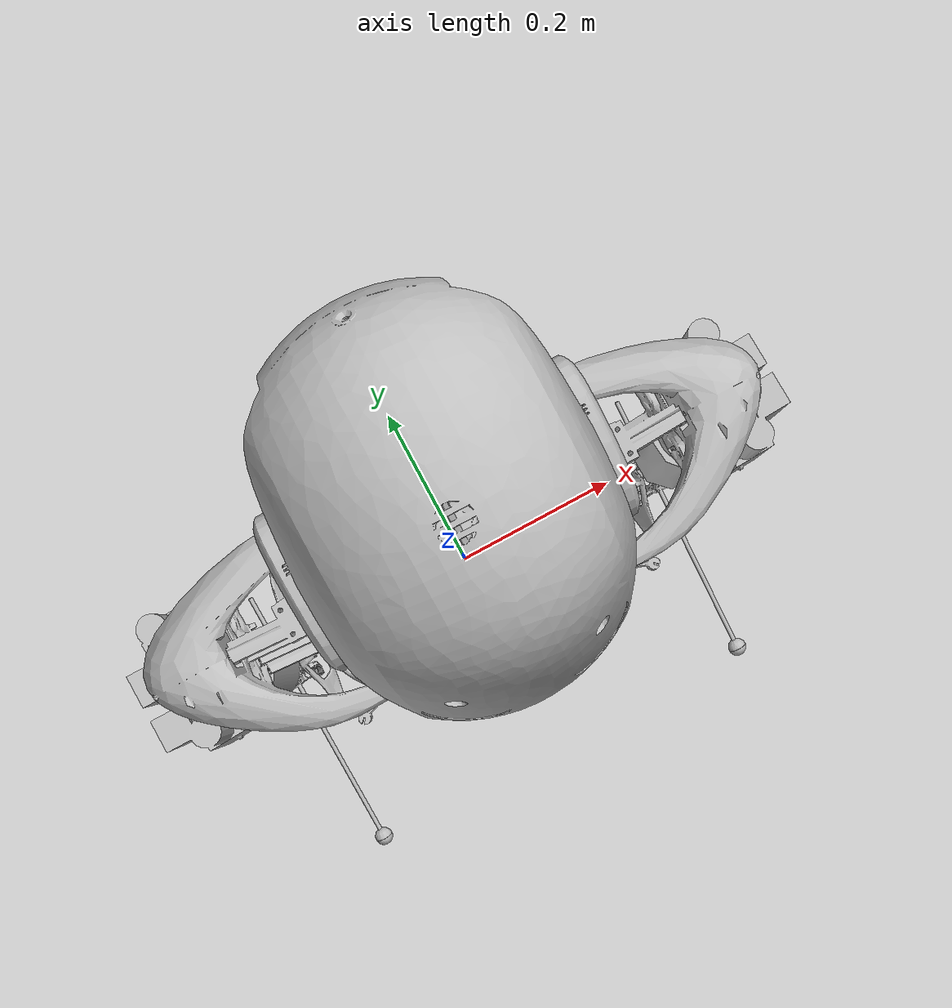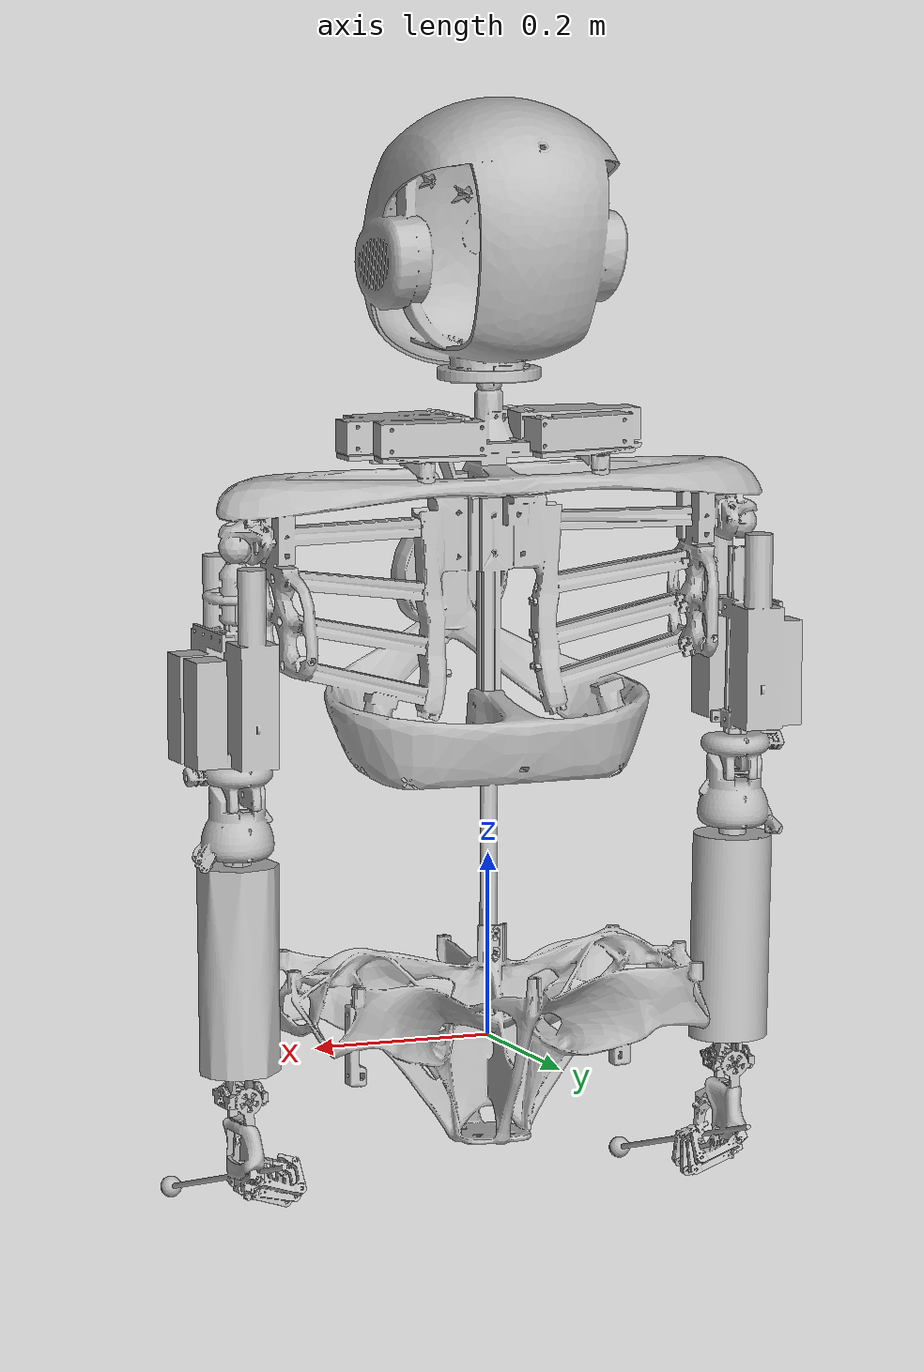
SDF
<sdf version="1.6">
    <model name="roboy_xylophone">
        <link name="torso">
            <self_collide>false</self_collide>
            <pose frame="">0.0 0.0 0.0 0.0 -0.0 0.0</pose>
            <inertial>
                <pose frame="">0.0 0.0 0.0 0 0 0</pose>
                <mass>1.372368407891531</mass>
                <inertia>
                    <ixx>3.910765453374194</ixx>
                    <ixy>-0.001095224797113174</ixy>
                    <ixz>0.043302154633862465</ixz>
                    <iyy>4.168439034043004</iyy>
                    <iyz>-0.013228815176824301</iyz>
                    <izz>0.3524412985016293</izz>
                </inertia>
            </inertial>
            <collision name="torso_collision">
                <geometry>
                    <mesh>
                        <uri>model://roboy_xylophone/meshes/collisions/torso.stl</uri>
                        <scale>0.001 0.001 0.001</scale>
                    </mesh>
                </geometry>
            </collision>
            <visual name="torso_visual">
                <geometry>
                    <mesh>
                        <uri>model://roboy_xylophone/meshes/visuals/torso.stl</uri>
                        <scale>0.001 0.001 0.001</scale>
                    </mesh>
                </geometry>
            </visual>
        </link>
        <link name="right_hand">
            <self_collide>false</self_collide>
            <pose frame="">-0.2698510367085325 -0.0017499434157416084 -0.1302469819688276 0.0 -0.0 0.0</pose>
            <inertial>
                <pose frame="">0.0 0.0 0.0 0 0 0</pose>
                <mass>0.020805908239869125</mass>
                <inertia>
                    <ixx>0.0075567109842610385</ixx>
                    <ixy>-0.003870948682374514</ixy>
                    <ixz>-0.0027023479542121133</ixz>
                    <iyy>0.019913740298193046</iyy>
                    <iyz>-0.0076257923873708664</iyz>
                    <izz>0.018971657099651783</izz>
                </inertia>
            </inertial>
            <collision name="right_hand_collision">
                <geometry>
                    <mesh>
                        <uri>model://roboy_xylophone/meshes/collisions/right_hand.stl</uri>
                        <scale>0.001 0.001 0.001</scale>
                    </mesh>
                </geometry>
            </collision>
            <visual name="right_hand_visual">
                <geometry>
                    <mesh>
                        <uri>model://roboy_xylophone/meshes/visuals/right_hand.stl</uri>
                        <scale>0.001 0.001 0.001</scale>
                    </mesh>
                </geometry>
            </visual>
        </link>
        <link name="left_hand">
            <self_collide>false</self_collide>
            <pose frame="">0.2697594900165811 -0.006792324262862302 -0.1314462184560031 0.0 -0.0 0.0</pose>
            <inertial>
                <pose frame="">0.0 0.0 0.0 0 0 0</pose>
                <mass>0.018650433962187907</mass>
                <inertia>
                    <ixx>0.00742411081802007</ixx>
                    <ixy>0.0038015046666095465</ixy>
                    <ixz>-0.002693661217771364</ixz>
                    <iyy>0.01767984161098725</iyy>
                    <iyz>0.007164025065289065</iyz>
                    <izz>0.016872438513441758</izz>
                </inertia>
            </inertial>
            <collision name="left_hand_collision">
                <geometry>
                    <mesh>
                        <uri>model://roboy_xylophone/meshes/collisions/left_hand.stl</uri>
                        <scale>0.001 0.001 0.001</scale>
                    </mesh>
                </geometry>
            </collision>
            <visual name="left_hand_visual">
                <geometry>
                    <mesh>
                        <uri>model://roboy_xylophone/meshes/visuals/left_hand.stl</uri>
                        <scale>0.001 0.001 0.001</scale>
                    </mesh>
                </geometry>
            </visual>
        </link>
        <link name="elbow_left">
            <self_collide>false</self_collide>
            <pose frame="">0.2924609988878703 0.0026742978127753526 0.24368519978311523 0.0 -0.0 0.0</pose>
            <inertial>
                <pose frame="">0.0 0.0 0.0 0 0 0</pose>
                <mass>0.015681537169755258</mass>
                <inertia>
                    <ixx>0.009431757217348843</ixx>
                    <ixy>-0.00012517065329283248</ixy>
                    <ixz>-9.888439213748464e-05</ixz>
                    <iyy>0.022865599183266166</iyy>
                    <iyz>-0.011162126418678987</iyz>
                    <izz>0.013542050845808416</izz>
                </inertia>
            </inertial>
            <collision name="elbow_left_collision">
                <geometry>
                    <mesh>
                        <uri>model://roboy_xylophone/meshes/collisions/elbow_left.stl</uri>
                        <scale>0.001 0.001 0.001</scale>
                    </mesh>
                </geometry>
            </collision>
            <visual name="elbow_left_visual">
                <geometry>
                    <mesh>
                        <uri>model://roboy_xylophone/meshes/visuals/elbow_left.stl</uri>
                        <scale>0.001 0.001 0.001</scale>
                    </mesh>
                </geometry>
            </visual>
        </link>
        <link name="elbow_right">
            <self_collide>false</self_collide>
            <pose frame="">-0.29205436561642706 0.002562136866253571 0.2407449775865269 0.0 -0.0 0.0</pose>
            <inertial>
                <pose frame="">0.0 0.0 0.0 0 0 0</pose>
                <mass>0.01737509895674572</mass>
                <inertia>
                    <ixx>0.010199619270761047</ixx>
                    <ixy>0.00013260458238670674</ixy>
                    <ixz>-0.0001041660034778284</ixz>
                    <iyy>0.02504128534242205</iyy>
                    <iyz>0.012203668182971939</iyz>
                    <izz>0.014951862459761598</izz>
                </inertia>
            </inertial>
            <collision name="elbow_right_collision">
                <geometry>
                    <mesh>
                        <uri>model://roboy_xylophone/meshes/collisions/elbow_right.stl</uri>
                        <scale>0.001 0.001 0.001</scale>
                    </mesh>
                </geometry>
            </collision>
            <visual name="elbow_right_visual">
                <geometry>
                    <mesh>
                        <uri>model://roboy_xylophone/meshes/visuals/elbow_right.stl</uri>
                        <scale>0.001 0.001 0.001</scale>
                    </mesh>
                </geometry>
            </visual>
        </link>
        <link name="sphere_right_link1">
            <self_collide>false</self_collide>
            <pose frame="">-0.2921799666276168 0.009210203783611735 0.548615244082417 0.0 -0.0 0.0</pose>
            <inertial>
                <pose frame="">0.0 0.0 0.0 0 0 0</pose>
                <mass>0.004675596089362313</mass>
                <inertia>
                    <ixx>0.014082487940467327</ixx>
                    <ixy>0.00012582201998645568</ixy>
                    <ixz>-0.00023625123995044107</ixz>
                    <iyy>0.01807003753984725</iyy>
                    <iyz>0.0074947179360907975</iyz>
                    <izz>0.004001456143427335</izz>
                </inertia>
            </inertial>
            <collision name="sphere_right_link1_collision">
                <geometry>
                    <mesh>
                        <uri>model://roboy_xylophone/meshes/collisions/sphere_right_link1.stl</uri>
                        <scale>0.001 0.001 0.001</scale>
                    </mesh>
                </geometry>
            </collision>
            <visual name="sphere_right_link1_visual">
                <geometry>
                    <mesh>
                        <uri>model://roboy_xylophone/meshes/visuals/sphere_right_link1.stl</uri>
                        <scale>0.001 0.001 0.001</scale>
                    </mesh>
                </geometry>
            </visual>
        </link>
        <link name="sphere_right_link2">
            <self_collide>false</self_collide>
            <pose frame="">-0.2921801724945091 0.009209908408672508 0.5486152414548352 0.0 -0.0 0.0</pose>
            <inertial>
                <pose frame="">0.0 0.0 0.0 0 0 0</pose>
                <mass>0.003133941577358247</mass>
                <inertia>
                    <ixx>0.009437852970646556</ixx>
                    <ixy>8.433288313845014e-05</ixy>
                    <ixz>-0.00015834854451237578</ixz>
                    <iyy>0.012110617225243162</iyy>
                    <iyz>0.005023535852643668</iyz>
                    <izz>0.002680779380039669</izz>
                </inertia>
            </inertial>
            <collision name="sphere_right_link2_collision">
                <geometry>
                    <mesh>
                        <uri>model://roboy_xylophone/meshes/collisions/sphere_right_link2.stl</uri>
                        <scale>0.001 0.001 0.001</scale>
                    </mesh>
                </geometry>
            </collision>
            <visual name="sphere_right_link2_visual">
                <geometry>
                    <mesh>
                        <uri>model://roboy_xylophone/meshes/visuals/sphere_right_link2.stl</uri>
                        <scale>0.001 0.001 0.001</scale>
                    </mesh>
                </geometry>
            </visual>
        </link>
        <link name="sphere_left_link1">
            <self_collide>false</self_collide>
            <pose frame="">0.29218005222734156 0.009210203825021935 0.5486152687569047 0.0 -0.0 0.0</pose>
            <inertial>
                <pose frame="">0.0 0.0 0.0 0 0 0</pose>
                <mass>0.0046755519327953445</mass>
                <inertia>
                    <ixx>0.014082356273081548</ixx>
                    <ixy>-0.00012582086921548955</ixy>
                    <ixz>-0.00023624902092354817</ixz>
                    <iyy>0.01806987052231626</iyy>
                    <iyz>-0.00749464968837342</iyz>
                    <izz>0.004001420718449545</izz>
                </inertia>
            </inertial>
            <collision name="sphere_left_link1_collision">
                <geometry>
                    <mesh>
                        <uri>model://roboy_xylophone/meshes/collisions/sphere_left_link1.stl</uri>
                        <scale>0.001 0.001 0.001</scale>
                    </mesh>
                </geometry>
            </collision>
            <visual name="sphere_left_link1_visual">
                <geometry>
                    <mesh>
                        <uri>model://roboy_xylophone/meshes/visuals/sphere_left_link1.stl</uri>
                        <scale>0.001 0.001 0.001</scale>
                    </mesh>
                </geometry>
            </visual>
        </link>
        <link name="sphere_left_link2">
            <self_collide>false</self_collide>
            <pose frame="">0.2921800660285928 0.009209897632250984 0.5486152570091472 0.0 -0.0 0.0</pose>
            <inertial>
                <pose frame="">0.0 0.0 0.0 0 0 0</pose>
                <mass>0.0031340208481721574</mass>
                <inertia>
                    <ixx>0.009438092156368896</ixx>
                    <ixy>-8.433488846064293e-05</ixy>
                    <ixz>-0.00015835236925662997</ixz>
                    <iyy>0.012110922096803804</iyy>
                    <iyz>-0.005023661231281029</iyz>
                    <izz>0.0026808451877708057</izz>
                </inertia>
            </inertial>
            <collision name="sphere_left_link2_collision">
                <geometry>
                    <mesh>
                        <uri>model://roboy_xylophone/meshes/collisions/sphere_left_link2.stl</uri>
                        <scale>0.001 0.001 0.001</scale>
                    </mesh>
                </geometry>
            </collision>
            <visual name="sphere_left_link2_visual">
                <geometry>
                    <mesh>
                        <uri>model://roboy_xylophone/meshes/visuals/sphere_left_link2.stl</uri>
                        <scale>0.001 0.001 0.001</scale>
                    </mesh>
                </geometry>
            </visual>
        </link>
        <link name="wrist_left_1">
            <self_collide>false</self_collide>
            <pose frame="">0.2838291081215929 -0.004517829187733993 -0.0460263795467499 0.0 -0.0 0.0</pose>
            <inertial>
                <pose frame="">0.0 0.0 0.0 0 0 0</pose>
                <mass>0.0012764273069100246</mass>
                <inertia>
                    <ixx>2.9933237342887354e-05</ixx>
                    <ixy>1.6313062661204246e-05</ixy>
                    <ixz>-2.60614002361967e-06</ixz>
                    <iyy>0.001058859487958565</iyy>
                    <iyz>0.00016684286591328332</iyz>
                    <izz>0.0010339769540120504</izz>
                </inertia>
            </inertial>
            <collision name="wrist_left_1_collision">
                <geometry>
                    <mesh>
                        <uri>model://roboy_xylophone/meshes/collisions/wrist_left_1.stl</uri>
                        <scale>0.001 0.001 0.001</scale>
                    </mesh>
                </geometry>
            </collision>
            <visual name="wrist_left_1_visual">
                <geometry>
                    <mesh>
                        <uri>model://roboy_xylophone/meshes/visuals/wrist_left_1.stl</uri>
                        <scale>0.001 0.001 0.001</scale>
                    </mesh>
                </geometry>
            </visual>
        </link>
        <link name="wrist_right_1">
            <self_collide>false</self_collide>
            <pose frame="">-0.2866867429541466 -0.004439510879921008 -0.04905987848597987 0.0 -0.0 0.0</pose>
            <inertial>
                <pose frame="">0.0 0.0 0.0 0 0 0</pose>
                <mass>0.0012762562533547099</mass>
                <inertia>
                    <ixx>3.3596818331877835e-05</ixx>
                    <ixy>-1.6206001652051634e-05</ixy>
                    <ixz>-2.73824321167433e-06</ixz>
                    <iyy>0.0010832076300652943</iyy>
                    <iyz>-0.00017947272958513367</iyz>
                    <izz>0.001054639875188272</izz>
                </inertia>
            </inertial>
            <collision name="wrist_right_1_collision">
                <geometry>
                    <mesh>
                        <uri>model://roboy_xylophone/meshes/collisions/wrist_right_1.stl</uri>
                        <scale>0.001 0.001 0.001</scale>
                    </mesh>
                </geometry>
            </collision>
            <visual name="wrist_right_1_visual">
                <geometry>
                    <mesh>
                        <uri>model://roboy_xylophone/meshes/visuals/wrist_right_1.stl</uri>
                        <scale>0.001 0.001 0.001</scale>
                    </mesh>
                </geometry>
            </visual>
        </link>
        <link name="upper_arm_left">
            <self_collide>false</self_collide>
            <pose frame="">0.30316149801185677 0.006609366620456846 0.3970754157042611 0.0 -0.0 0.0</pose>
            <inertial>
                <pose frame="">0.0 0.0 0.0 0 0 0</pose>
                <mass>0.11809063299122686</mass>
                <inertia>
                    <ixx>0.1924990473234301</ixx>
                    <ixy>-0.0023063348715922343</ixy>
                    <ixz>-0.00308931839405198</ixz>
                    <iyy>0.2997319906640523</iyy>
                    <iyz>-0.14192245743426316</iyz>
                    <izz>0.11100085723502803</izz>
                </inertia>
            </inertial>
            <collision name="upper_arm_left_collision">
                <geometry>
                    <mesh>
                        <uri>model://roboy_xylophone/meshes/collisions/upper_arm_left.stl</uri>
                        <scale>0.001 0.001 0.001</scale>
                    </mesh>
                </geometry>
            </collision>
            <visual name="upper_arm_left_visual">
                <geometry>
                    <mesh>
                        <uri>model://roboy_xylophone/meshes/visuals/upper_arm_left.stl</uri>
                        <scale>0.001 0.001 0.001</scale>
                    </mesh>
                </geometry>
            </visual>
        </link>
        <link name="lower_arm_left">
            <self_collide>false</self_collide>
            <pose frame="">0.2867576752988603 -0.0012029774645435035 0.09482915225116281 0.0 -0.0 0.0</pose>
            <inertial>
                <pose frame="">0.0 0.0 0.0 0 0 0</pose>
                <mass>0.141591868208817</mass>
                <inertia>
                    <ixx>0.01972474263641184</ixx>
                    <ixy>0.0004870846174633889</ixy>
                    <ixz>3.185483018737706e-05</ixz>
                    <iyy>0.1361518524392809</iyy>
                    <iyz>-0.03856116577753053</iyz>
                    <izz>0.11772501099801312</izz>
                </inertia>
            </inertial>
            <collision name="lower_arm_left_collision">
                <geometry>
                    <mesh>
                        <uri>model://roboy_xylophone/meshes/collisions/lower_arm_left.stl</uri>
                        <scale>0.001 0.001 0.001</scale>
                    </mesh>
                </geometry>
            </collision>
            <visual name="lower_arm_left_visual">
                <geometry>
                    <mesh>
                        <uri>model://roboy_xylophone/meshes/visuals/lower_arm_left.stl</uri>
                        <scale>0.001 0.001 0.001</scale>
                    </mesh>
                </geometry>
            </visual>
        </link>
        <link name="lower_arm_right">
            <self_collide>false</self_collide>
            <pose frame="">-0.28690316197811633 -0.0012971012985662463 0.09028215193184677 0.0 -0.0 0.0</pose>
            <inertial>
                <pose frame="">0.0 0.0 0.0 0 0 0</pose>
                <mass>1.3992272098398937</mass>
                <inertia>
                    <ixx>0.018109856489779336</ixx>
                    <ixy>-0.000519132167958026</ixy>
                    <ixz>4.0051155010875704e-05</ixz>
                    <iyy>0.1332812730438574</iyy>
                    <iyz>0.036311065649301234</iyz>
                    <izz>0.11646776713622453</izz>
                </inertia>
            </inertial>
            <collision name="lower_arm_right_collision">
                <geometry>
                    <mesh>
                        <uri>model://roboy_xylophone/meshes/collisions/lower_arm_right.stl</uri>
                        <scale>0.001 0.001 0.001</scale>
                    </mesh>
                </geometry>
            </collision>
            <visual name="lower_arm_right_visual">
                <geometry>
                    <mesh>
                        <uri>model://roboy_xylophone/meshes/visuals/lower_arm_right.stl</uri>
                        <scale>0.001 0.001 0.001</scale>
                    </mesh>
                </geometry>
            </visual>
        </link>
        <link name="upper_arm_right">
            <self_collide>false</self_collide>
            <pose frame="">-0.3025447305327413 0.004242419884484555 0.39763297257341446 0.0 -0.0 0.0</pose>
            <inertial>
                <pose frame="">0.0 0.0 0.0 0 0 0</pose>
                <mass>0.10958327493598512</mass>
                <inertia>
                    <ixx>0.17904249668222721</ixx>
                    <ixy>0.0013739028297231495</ixy>
                    <ixz>-0.0018802494637687244</ixz>
                    <iyy>0.2781451232699976</iyy>
                    <iyz>0.13162899491953578</iyz>
                    <izz>0.10257941183247153</izz>
                </inertia>
            </inertial>
            <collision name="upper_arm_right_collision">
                <geometry>
                    <mesh>
                        <uri>model://roboy_xylophone/meshes/collisions/upper_arm_right.stl</uri>
                        <scale>0.001 0.001 0.001</scale>
                    </mesh>
                </geometry>
            </collision>
            <visual name="upper_arm_right_visual">
                <geometry>
                    <mesh>
                        <uri>model://roboy_xylophone/meshes/visuals/upper_arm_right.stl</uri>
                        <scale>0.001 0.001 0.001</scale>
                    </mesh>
                </geometry>
            </visual>
        </link>
        <link name="sphere_head_link1">
            <self_collide>false</self_collide>
            <pose frame="">-2.0591149070298685e-14 0.0015217810850767161 0.7110989936345878 0.0 -0.0 0.0</pose>
            <inertial>
                <pose frame="">0.0 0.0 0.0 0 0 0</pose>
                <mass>0.0023938100802369734</mass>
                <inertia>
                    <ixx>0.012106595625813408</ixx>
                    <ixy>7.508425305113864e-19</ixy>
                    <ixz>-2.5904304543214497e-05</ixz>
                    <iyy>0.012106540189536562</iyy>
                    <iyz>3.5051683777709287e-16</iyz>
                    <izz>2.012994235293797e-06</izz>
                </inertia>
            </inertial>
            <collision name="sphere_head_link1_collision">
                <geometry>
                    <mesh>
                        <uri>model://roboy_xylophone/meshes/collisions/sphere_head_link1.stl</uri>
                        <scale>0.001 0.001 0.001</scale>
                    </mesh>
                </geometry>
            </collision>
            <visual name="sphere_head_link1_visual">
                <geometry>
                    <mesh>
                        <uri>model://roboy_xylophone/meshes/visuals/sphere_head_link1.stl</uri>
                        <scale>0.001 0.001 0.001</scale>
                    </mesh>
                </geometry>
            </visual>
        </link>
        <link name="shere_head_link2">
            <self_collide>false</self_collide>
            <pose frame="">-2.0576940733084e-14 0.001521781085076725 0.7110989936345874 0.0 -0.0 0.0</pose>
            <inertial>
                <pose frame="">0.0 0.0 0.0 0 0 0</pose>
                <mass>0.0016046417516495697</mass>
                <inertia>
                    <ixx>0.008114981473636663</ixx>
                    <ixy>5.029234407399885e-19</ixy>
                    <ixz>-1.7364422082044644e-05</ixz>
                    <iyy>0.008114944313059423</iyy>
                    <iyz>2.348593541867672e-16</iyz>
                    <izz>9.214497104106424e-07</izz>
                </inertia>
            </inertial>
            <collision name="shere_head_link2_collision">
                <geometry>
                    <mesh>
                        <uri>model://roboy_xylophone/meshes/collisions/shere_head_link2.stl</uri>
                        <scale>0.001 0.001 0.001</scale>
                    </mesh>
                </geometry>
            </collision>
            <visual name="shere_head_link2_visual">
                <geometry>
                    <mesh>
                        <uri>model://roboy_xylophone/meshes/visuals/shere_head_link2.stl</uri>
                        <scale>0.001 0.001 0.001</scale>
                    </mesh>
                </geometry>
            </visual>
        </link>
        <link name="head">
            <self_collide>false</self_collide>
            <kinematic>true</kinematic>
            <pose frame="">0.0006492376358659663 0.015046110821376588 0.8664862621002404 0.0 -0.0 0.0</pose>
            <inertial>
                <pose frame="">0.0 0.0 0.0 0 0 0</pose>
                <mass>1</mass>
                <inertia>
                    <ixx>1.5846048067305112</ixx>
                    <ixy>-2.8828445995337716e-05</ixy>
                    <ixz>-0.02944270231917974</ixz>
                    <iyy>1.578896510489258</iyy>
                    <iyz>-0.0012884346701907063</iyz>
                    <izz>0.0255508320008188</izz>
                </inertia>
            </inertial>
            <collision name="head_collision">
                <geometry>
                    <mesh>
                        <uri>model://roboy_xylophone/meshes/collisions/head.stl</uri>
                        <scale>0.001 0.001 0.001</scale>
                    </mesh>
                </geometry>
            </collision>
            <visual name="head_visual">
                <geometry>
                    <mesh>
                        <uri>model://roboy_xylophone/meshes/visuals/head.stl</uri>
                        <scale>0.001 0.001 0.001</scale>
                    </mesh>
                </geometry>
            </visual>
        </link>
        <link name="base">
            <self_collide>false</self_collide>
            <kinematic>true</kinematic>
            <pose frame="">0.0 0.0 0.0 0.0 -0.0 0.0</pose>
            <inertial>
                <pose frame="">0.0 0.0 0.0 0 0 0</pose>
                <mass>0.08375538014504047</mass>
                <inertia>
                    <ixx>0.004947439478836191</ixx>
                    <ixy>1.8900910193672462e-05</ixy>
                    <ixz>1.8376373411173705e-05</ixz>
                    <iyy>0.013020882991024406</iyy>
                    <iyz>7.086050217485074e-06</iyz>
                    <izz>0.012613089761592724</izz>
                </inertia>
            </inertial>
            <collision name="base_collision">
                <geometry>
                    <mesh>
                        <uri>model://roboy_xylophone/meshes/collisions/base.stl</uri>
                        <scale>0.001 0.001 0.001</scale>
                    </mesh>
                </geometry>
            </collision>
            <visual name="base_visual">
                <geometry>
                    <mesh>
                        <uri>model://roboy_xylophone/meshes/visuals/base.stl</uri>
                        <scale>0.001 0.001 0.001</scale>
                    </mesh>
                </geometry>
            </visual>
        </link>
        <link name="left_stick_tip">
            <self_collide>false</self_collide>
            <pose frame="">0.2692093428891479 -0.27579017670378486 -0.20327503666285687 0.0 -0.0 0.0</pose>
            <inertial>
                <pose frame="">0.0 0.0 0.0 0 0 0</pose>
                <mass>0.0026023156971151314</mass>
                <inertia>
                    <ixx>0.003055544257033057</ixx>
                    <ixy>0.0019320978532239472</ixy>
                    <ixz>-0.0014587537400506572</ixz>
                    <iyy>0.002962679652716562</iyy>
                    <iyz>0.001424079527170524</iyz>
                    <izz>0.003866281674384223</izz>
                </inertia>
            </inertial>
            <collision name="left_stick_tip_collision">
                <geometry>
                    <mesh>
                        <uri>model://roboy_xylophone/meshes/collisions/left_stick_tip.stl</uri>
                        <scale>0.001 0.001 0.001</scale>
                    </mesh>
                </geometry>
            </collision>
            <visual name="left_stick_tip_visual">
                <geometry>
                    <mesh>
                        <uri>model://roboy_xylophone/meshes/visuals/left_stick_tip.stl</uri>
                        <scale>0.001 0.001 0.001</scale>
                    </mesh>
                </geometry>
            </visual>
        </link>
        <link name="right_stick_tip">
            <self_collide>false</self_collide>
            <pose frame="">-0.272131258246756 -0.2756784841545138 -0.20336496032974374 0.0 -0.0 0.0</pose>
            <inertial>
                <pose frame="">0.0 0.0 0.0 0 0 0</pose>
                <mass>0.002602315697115411</mass>
                <inertia>
                    <ixx>0.00305489268329945</ixx>
                    <ixy>-0.0019522723505767325</ixy>
                    <ixz>-0.001458818403558204</ixz>
                    <iyy>0.003004799357065121</iyy>
                    <iyz>-0.0014401715227325498</iyz>
                    <izz>0.0039058346651765483</izz>
                </inertia>
            </inertial>
            <collision name="right_stick_tip_collision">
                <geometry>
                    <mesh>
                        <uri>model://roboy_xylophone/meshes/collisions/right_stick_tip.stl</uri>
                        <scale>0.001 0.001 0.001</scale>
                    </mesh>
                </geometry>
            </collision>
            <visual name="right_stick_tip_visual">
                <geometry>
                    <mesh>
                        <uri>model://roboy_xylophone/meshes/visuals/right_stick_tip.stl</uri>
                        <scale>0.001 0.001 0.001</scale>
                    </mesh>
                </geometry>
            </visual>
        </link>
        <joint name="hip_joint" type="revolute">
            <parent>base</parent>
            <child>torso</child>
            <pose frame="">6.8199713028958765e-19 0.001521781085074027 0.10423789166998208 0 0 0</pose>
            <axis>
                <xyz>-9.863650210179225e-31 5.148659276699155e-15 -1.0000000000000002</xyz>
                <limit>
                    <lower>-0.17453292519943295</lower>
                    <upper>0.17453292519943295</upper>
                </limit>
                <use_parent_model_frame>0</use_parent_model_frame>
                <dynamics>
                    <damping>0.1</damping>
                    <friction>0.1</friction>
                </dynamics>
            </axis>
        </joint>
        <joint name="elbow_right_rot1" type="revolute">
            <parent>elbow_right</parent>
            <child>lower_arm_right</child>
            <pose frame="">-0.0014317049176433016 0.0028331904169268964 0.1236931270570428 0 0 0</pose>
            <axis>
                <xyz>-0.01118842648953284 0.022909252225335578 0.999674939805517</xyz>
                <limit>
                    <lower>-1.5707963267948966</lower>
                    <upper>1.5707963267948966</upper>
                </limit>
                <use_parent_model_frame>0</use_parent_model_frame>
                <dynamics>
                    <damping>0.1</damping>
                    <friction>0.1</friction>
                </dynamics>
            </axis>
        </joint>
        <joint name="left_wrist_0" type="revolute">
            <parent>lower_arm_left</parent>
            <child>wrist_left_1</child>
            <pose frame="">-0.009900625387205118 -0.0006389576348572506 -0.0010673226779253132 0 0 0</pose>
            <axis>
                <xyz>-0.9974356911086111 -0.06112686075287341 0.037222963304743374</xyz>
                <limit>
                    <lower>-0.5235987755982988</lower>
                    <upper>0.5235987755982988</upper>
                </limit>
                <use_parent_model_frame>0</use_parent_model_frame>
                <dynamics>
                    <damping>0.1</damping>
                    <friction>0.1</friction>
                </dynamics>
            </axis>
        </joint>
        <joint name="left_wrist_1" type="revolute">
            <parent>wrist_left_1</parent>
            <child>left_hand</child>
            <pose frame="">0.015726692712065785 -0.015184675598829038 0.08434970839173359 0 0 0</pose>
            <axis>
                <xyz>-0.06197857490501217 0.9978311478764739 -0.022173330382833693</xyz>
                <limit>
                    <lower>-0.5235987755982988</lower>
                    <upper>0.5235987755982988</upper>
                </limit>
                <use_parent_model_frame>0</use_parent_model_frame>
                <dynamics>
                    <damping>0.1</damping>
                    <friction>0.1</friction>
                </dynamics>
            </axis>
        </joint>
        <joint name="elbow_left_rot1" type="revolute">
            <parent>elbow_left</parent>
            <child>lower_arm_left</child>
            <pose frame="">0.0015883800233882184 0.0027619758351277875 0.12014580167753083 0 0 0</pose>
            <axis>
                <xyz>-0.011188426489533955 -0.022909252225335637 -0.9996749398055156</xyz>
                <limit>
                    <lower>-1.5707963267948966</lower>
                    <upper>1.5707963267948966</upper>
                </limit>
                <use_parent_model_frame>0</use_parent_model_frame>
                <dynamics>
                    <damping>0.1</damping>
                    <friction>0.1</friction>
                </dynamics>
            </axis>
        </joint>
        <joint name="elbow_left_rot0" type="revolute">
            <parent>upper_arm_left</parent>
            <child>elbow_left</child>
            <pose frame="">0.014657053051341755 -0.00368655744913409 0.03741012373978524 0 0 0</pose>
            <axis>
                <xyz>-0.9986354432836098 -0.05074429632816577 0.012339684270769044</xyz>
                <limit>
                    <lower>0.0</lower>
                    <upper>1.5707963267948966</upper>
                </limit>
                <use_parent_model_frame>0</use_parent_model_frame>
                <dynamics>
                    <damping>0.1</damping>
                    <friction>0.1</friction>
                </dynamics>
            </axis>
        </joint>
        <joint name="sphere_left_axis0" type="revolute">
            <parent>torso</parent>
            <child>sphere_left_link1</child>
            <pose frame="">3.9283446540139265e-09 -1.6697847606605976e-07 -3.766154485163043e-08 0 0 0</pose>
            <axis>
                <xyz>0.9986354432836129 0.05074429632816833 -0.012339684270770038</xyz>
                <limit>
                    <lower>-3.141592653589793</lower>
                    <upper>3.141592653589793</upper>
                </limit>
                <use_parent_model_frame>0</use_parent_model_frame>
                <dynamics>
                    <damping>0.1</damping>
                    <friction>0.1</friction>
                </dynamics>
            </axis>
        </joint>
        <joint name="sphere_left_axis1" type="revolute">
            <parent>sphere_left_link1</parent>
            <child>sphere_left_link2</child>
            <pose frame="">-9.872906687746764e-09 1.3921429486973835e-07 -2.5913787311537816e-08 0 0 0</pose>
            <axis>
                <xyz>-0.05101049431667493 0.9984488883025682 -0.022310242422112825</xyz>
                <limit>
                    <lower>-3.141592653589793</lower>
                    <upper>3.141592653589793</upper>
                </limit>
                <use_parent_model_frame>0</use_parent_model_frame>
                <dynamics>
                    <damping>0.1</damping>
                    <friction>0.1</friction>
                </dynamics>
            </axis>
        </joint>
        <joint name="sphere_left_axis2" type="revolute">
            <parent>sphere_left_link2</parent>
            <child>upper_arm_left</child>
            <pose frame="">-0.010981441799162148 0.0026006691102354105 0.15153981541603231 0 0 0</pose>
            <axis>
                <xyz>-0.01118842648953418 -0.022909252225335505 -0.9996749398055222</xyz>
                <limit>
                    <lower>-3.141592653589793</lower>
                    <upper>3.141592653589793</upper>
                </limit>
                <use_parent_model_frame>0</use_parent_model_frame>
                <dynamics>
                    <damping>0.1</damping>
                    <friction>0.1</friction>
                </dynamics>
            </axis>
        </joint>
        <joint name="sphere_right_axis0" type="revolute">
            <parent>torso</parent>
            <child>sphere_right_link1</child>
            <pose frame="">-8.958507578427089e-08 -1.6805291932708855e-07 -1.2962123818738291e-08 0 0 0</pose>
            <axis>
                <xyz>0.05101049431667341 0.998448888302569 -0.022310242422112804</xyz>
                <limit>
                    <lower>-3.141592653589793</lower>
                    <upper>3.141592653589793</upper>
                </limit>
                <use_parent_model_frame>0</use_parent_model_frame>
                <dynamics>
                    <damping>0.1</damping>
                    <friction>0.1</friction>
                </dynamics>
            </axis>
        </joint>
        <joint name="sphere_right_axis2" type="revolute">
            <parent>sphere_right_link2</parent>
            <child>upper_arm_right</child>
            <pose frame="">0.010364674320048835 0.004967615846207826 0.1509822585468786 0 0 0</pose>
            <axis>
                <xyz>0.011188426489535866 -0.022909252225335328 -0.9996749398055187</xyz>
                <limit>
                    <lower>-3.141592653589793</lower>
                    <upper>3.141592653589793</upper>
                </limit>
                <use_parent_model_frame>0</use_parent_model_frame>
                <dynamics>
                    <damping>0.1</damping>
                    <friction>0.1</friction>
                </dynamics>
            </axis>
        </joint>
        <joint name="sphere_right_axis1" type="revolute">
            <parent>sphere_right_link1</parent>
            <child>sphere_right_link2</child>
            <pose frame="">1.1628181660228165e-07 1.2732201988607807e-07 -1.033454232413078e-08 0 0 0</pose>
            <axis>
                <xyz>-0.9986354432836146 0.050744296328166766 -0.012339684270771867</xyz>
                <limit>
                    <lower>-3.141592653589793</lower>
                    <upper>3.141592653589793</upper>
                </limit>
                <use_parent_model_frame>0</use_parent_model_frame>
                <dynamics>
                    <damping>0.1</damping>
                    <friction>0.1</friction>
                </dynamics>
            </axis>
        </joint>
        <joint name="elbow_right_rot0" type="revolute">
            <parent>upper_arm_right</parent>
            <child>elbow_right</child>
            <pose frame="">-0.015052497896296053 -0.0035973057548359805 0.03935067099656884 0 0 0</pose>
            <axis>
                <xyz>-0.9986354432836139 0.050744296328165295 -0.012339684270768765</xyz>
                <limit>
                    <lower>0.0</lower>
                    <upper>1.5707963267948966</upper>
                </limit>
                <use_parent_model_frame>0</use_parent_model_frame>
                <dynamics>
                    <damping>0.1</damping>
                    <friction>0.1</friction>
                </dynamics>
            </axis>
        </joint>
        <joint name="right_wrist_0" type="revolute">
            <parent>lower_arm_right</parent>
            <child>wrist_right_1</child>
            <pose frame="">0.011094392792996715 -0.00048043688755373905 -0.0015766831427710582 0 0 0</pose>
            <axis>
                <xyz>0.9991077747968851 -0.04032476901588534 -0.012552583169695498</xyz>
                <limit>
                    <lower>-0.5235987755982988</lower>
                    <upper>0.5235987755982988</upper>
                </limit>
                <use_parent_model_frame>0</use_parent_model_frame>
                <dynamics>
                    <damping>0.1</damping>
                    <friction>0.1</friction>
                </dynamics>
            </axis>
        </joint>
        <joint name="right_wrist_1" type="revolute">
            <parent>wrist_right_1</parent>
            <child>right_hand</child>
            <pose frame="">-0.015531310593887149 0.014734962767048852 0.07934944438475781 0 0 0</pose>
            <axis>
                <xyz>0.040036256805536984 0.9989461168065814 -0.022444461634320585</xyz>
                <limit>
                    <lower>-0.5235987755982988</lower>
                    <upper>0.5235987755982988</upper>
                </limit>
                <use_parent_model_frame>0</use_parent_model_frame>
                <dynamics>
                    <damping>0.1</damping>
                    <friction>0.1</friction>
                </dynamics>
            </axis>
        </joint>
        <joint name="sphere_head_axis0" type="revolute">
            <parent>torso</parent>
            <child>sphere_head_link1</child>
            <pose frame="">-3.0802094775900282e-18 -3.608224830031759e-18 -1.4210854715202004e-16 0 0 0</pose>
            <axis>
                <xyz>2.506675422786485e-16 -1.0000000000000004 8.242631900833768e-15</xyz>
                <limit>
                    <lower>-0.5235987755982988</lower>
                    <upper>0.5235987755982988</upper>
                </limit>
                <use_parent_model_frame>0</use_parent_model_frame>
                <dynamics>
                    <friction>0.5</friction>
                </dynamics>
            </axis>
        </joint>
        <joint name="sphere_head_axis2" type="revolute">
            <parent>shere_head_link2</parent>
            <child>head</child>
            <pose frame="">-0.0006492376358865602 -0.013524329736299884 -0.15538726846565296 0 0 0</pose>
            <axis>
                <xyz>-2.4131887955448744e-14 8.24263190083376e-15 1.0</xyz>
                <limit>
                    <lower>-0.5235987755982988</lower>
                    <upper>0.5235987755982988</upper>
                </limit>
                <use_parent_model_frame>0</use_parent_model_frame>
                <dynamics>
                    <friction>0.5</friction>
                </dynamics>
            </axis>
        </joint>
        <joint name="sphere_head_axis1" type="revolute">
            <parent>sphere_head_link1</parent>
            <child>shere_head_link2</child>
            <pose frame="">-1.7288546692289503e-17 -1.3322676295501878e-17 2.842170943040401e-16 0 0 0</pose>
            <axis>
                <xyz>-1.0000000000000004 -2.506675422788488e-16 -2.413188795544875e-14</xyz>
                <limit>
                    <lower>-0.5235987755982988</lower>
                    <upper>0.5235987755982988</upper>
                </limit>
                <use_parent_model_frame>0</use_parent_model_frame>
                <dynamics>
                    <friction>0.5</friction>
                </dynamics>
            </axis>
        </joint>
        <joint name="left_stick_tip_joint" type="revolute">
            <parent>left_hand</parent>
            <child>left_stick_tip</child>
            <pose frame="">8.740522319321542e-06 0.004273732635654888 0.0011412002917457898 0 0 0</pose>
            <axis>
                <xyz>1 0 0</xyz>
                <limit>
                    <lower>0</lower>
                    <upper>0</upper>
                </limit>
                <use_parent_model_frame>0</use_parent_model_frame>
                <dynamics>
                    <damping>0.1</damping>
                    <friction>0.1</friction>
                </dynamics>
            </axis>
        </joint>
        <joint name="right_stick_tip_joint" type="revolute">
            <parent>right_hand</parent>
            <child>right_stick_tip</child>
            <pose frame="">3.641937525824091e-05 0.004375147831467672 0.0011678299880273713 0 0 0</pose>
            <axis>
                <xyz>1 0 0</xyz>
                <limit>
                    <lower>0</lower>
                    <upper>0</upper>
                </limit>
                <use_parent_model_frame>0</use_parent_model_frame>
                <dynamics>
                    <damping>0.1</damping>
                    <friction>0.1</friction>
                </dynamics>
            </axis>
        </joint>
        <plugin filename="libcardsflow_gazebo_plugin.so" name="cardsflow_gazebo_plugin"/>
    </model>
</sdf>
